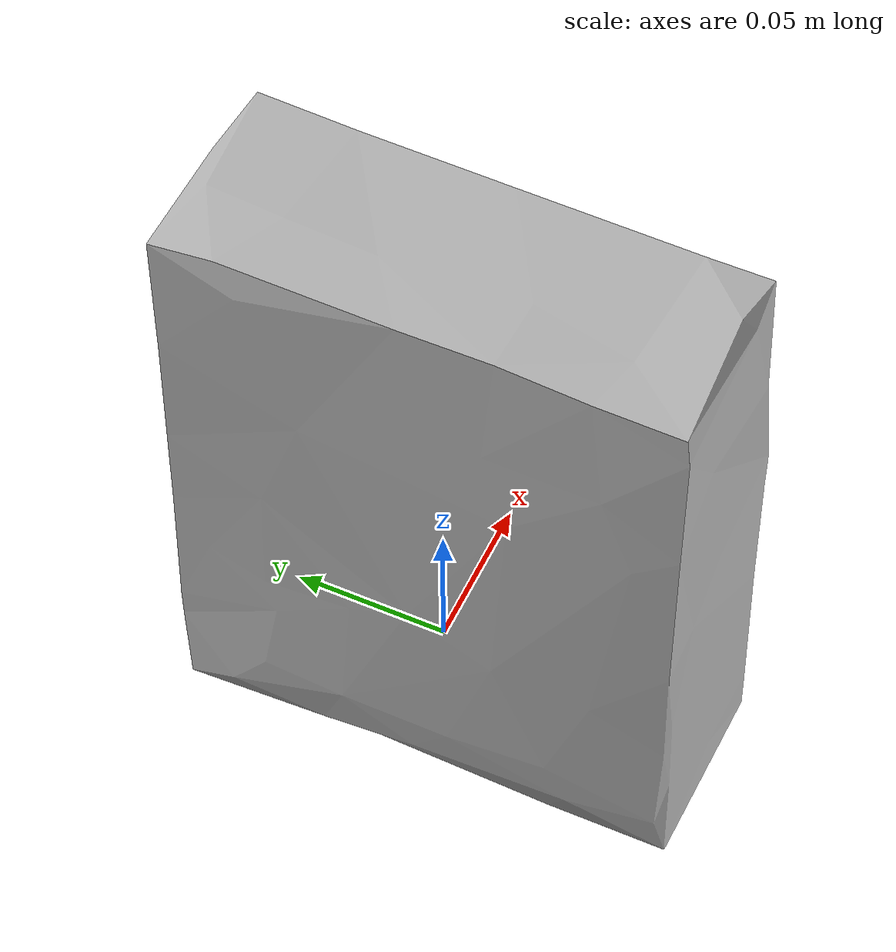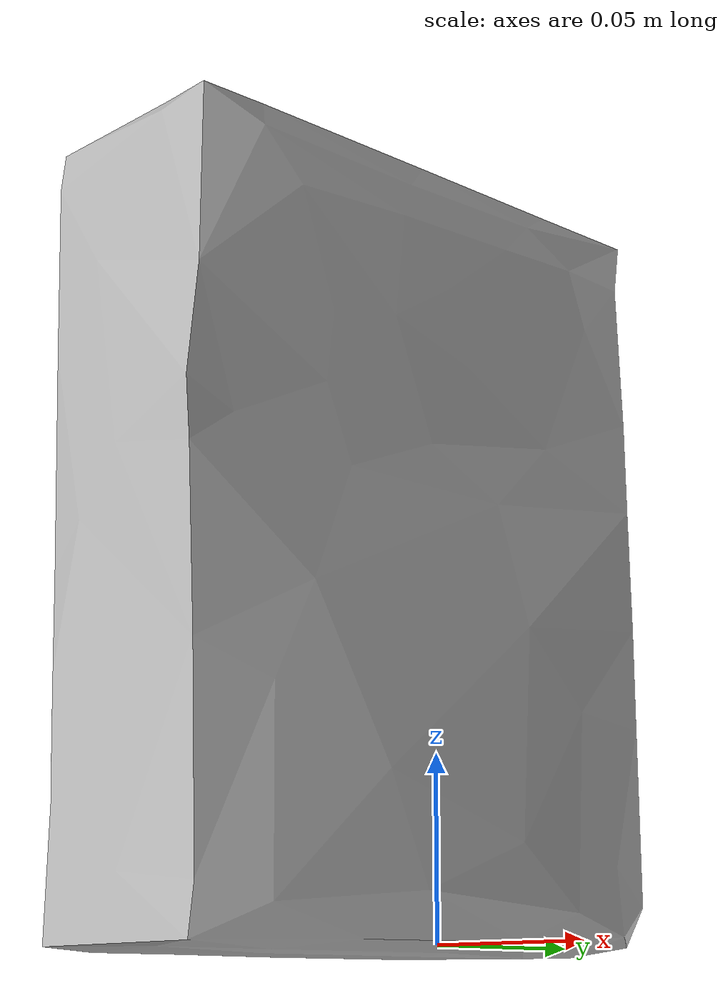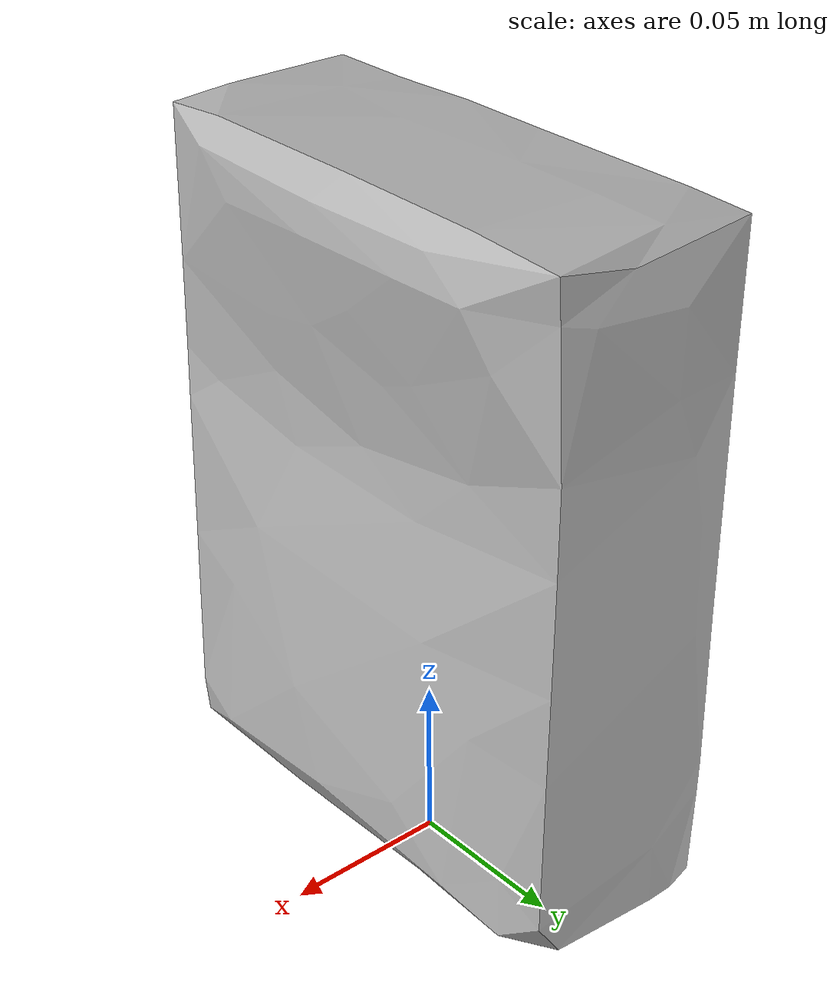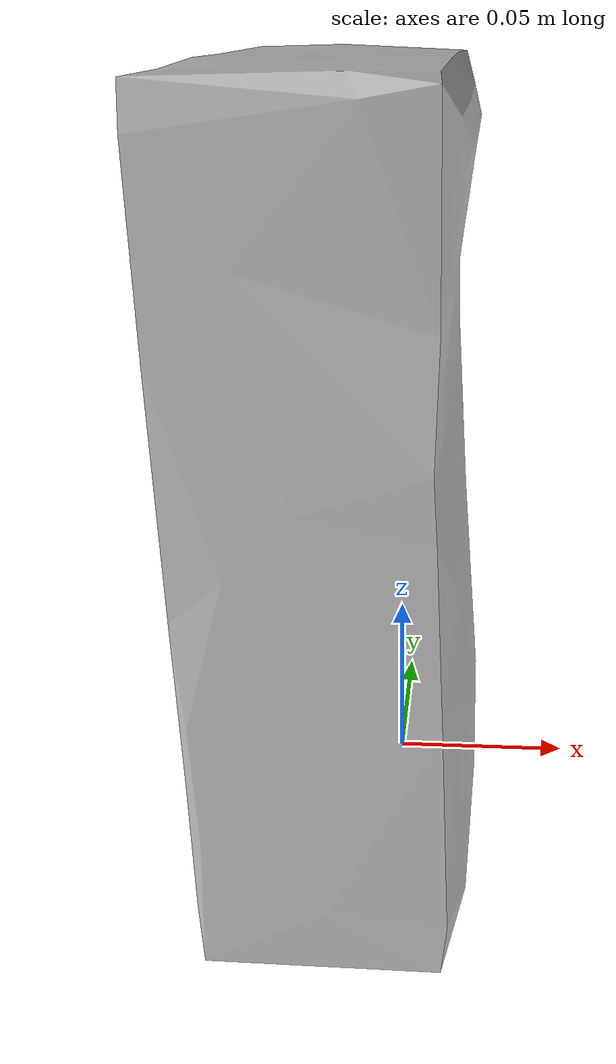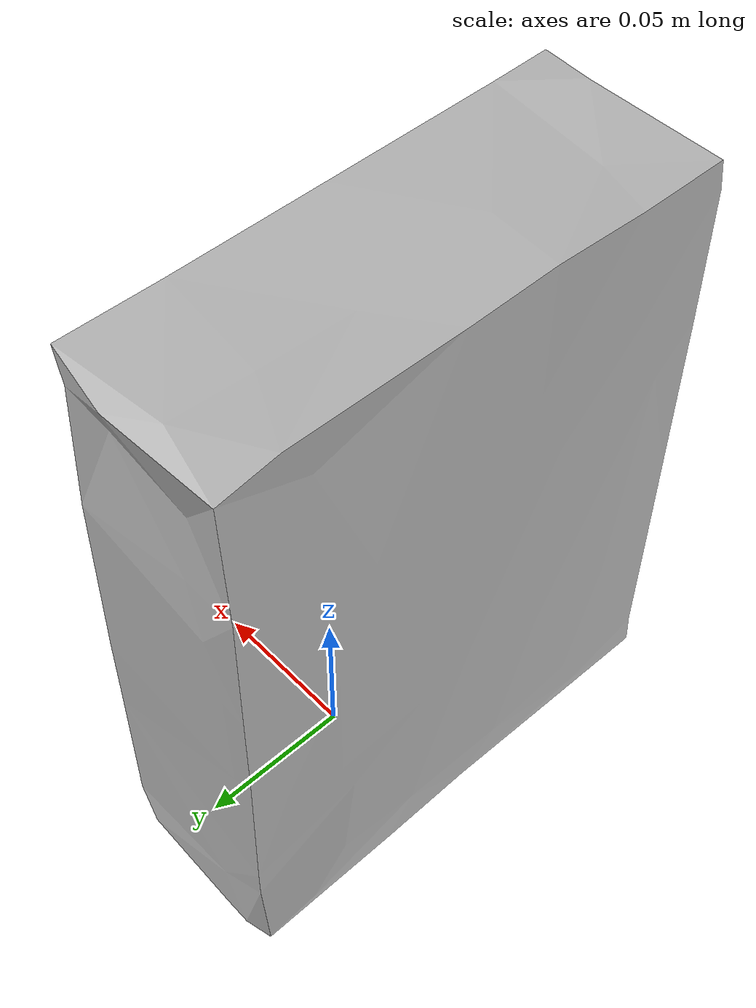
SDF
<?xml version='1.0'?>
<sdf version="1.4">
  <model name="003_cracker_box">
    <static>false</static>
    <link name="link">
      <inertial>
        <pose>-0.013657872174251878 -0.013876332723113357 0.10302055916279186 0.0024353486253942853 0.006732277738193318 -3.1411020291557405</pose>
        <mass>0.23097137532988093</mass>
        <inertia>
          <ixx>0.0013397983428475447</ixx>
          <ixy>1.4755914549846708e-22</ixy>
          <ixz>1.0724526365204072e-21</ixz>
          <iyy>0.0009377121713481873</iyy>
          <iyz>8.959697670204539e-20</iyz>
          <izz>0.000577176074294215</izz>
        </inertia>
      </inertial>
      <collision name="collision">
        <geometry>
          <mesh>
            <!-- Use a downsampled mesh for collisions -->
            <uri>model:///003_cracker_box/003_cracker_box_250_collision.stl</uri>
	        </mesh>
        </geometry>
        <surface>
      </surface>
      </collision>
      <visual name="visual">
        <geometry>
          <mesh>
            <uri>model:///003_cracker_box/textured.obj</uri>
	        </mesh>
        </geometry>
        <material>
          <script>
            <uri>model:///003_cracker_box/003_cracker_box.material</uri>
            <name>003_cracker_box</name>
          </script>
        </material>
      </visual>
    </link>
  </model>
</sdf>
